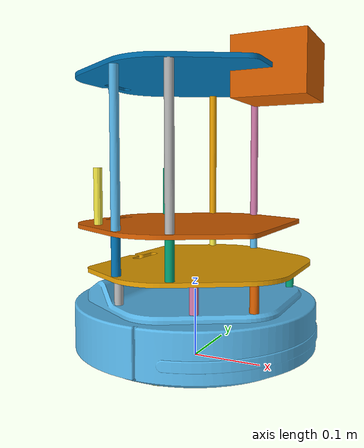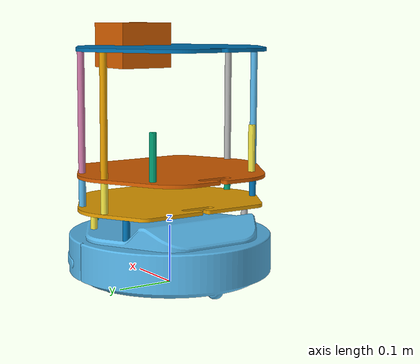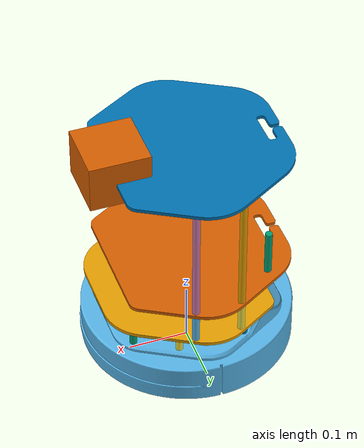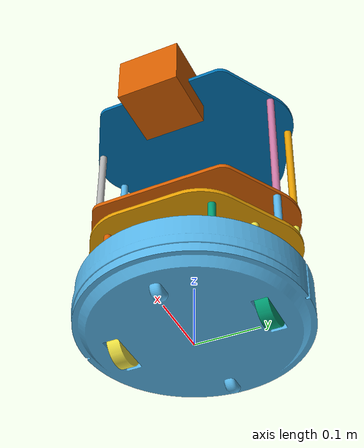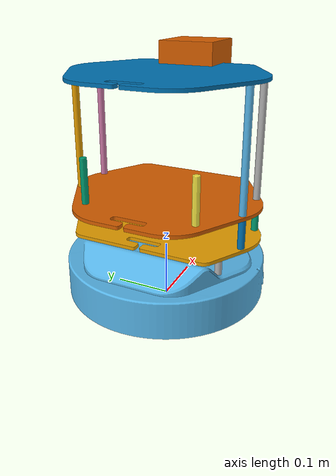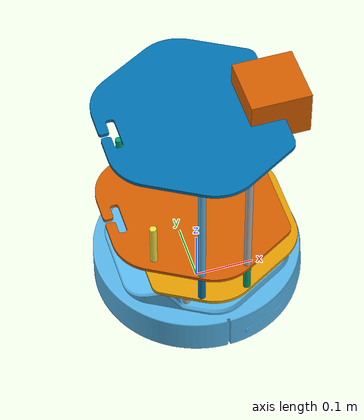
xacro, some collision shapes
<?xml version="1.0"?>
<!--
    - Base      : kobuki
    - Stacks    : hexagons
    - 3d Sensor : no
    - top_plate : urg04lx
-->
<robot name="turtlebot" xmlns:xacro="http://ros.org/wiki/xacro">

  <xacro:arg name="prefix_frame" default=""/>
  <!--xacro:include filename="$(find turtlebot_description)/urdf/turtlebot_library.urdf.xacro" /-->
  <xacro:include filename="$(find turtlebot_description)/urdf/turtlebot_library_multi.urdf.xacro" />
  <xacro:include filename="$(find turtlebot_description)/urdf/stacks/hexagons.urdf.xacro"/>
  <kobuki prefix_frame="$(arg prefix_frame)"/>
  <stack_hexagons prefix_frame="$(arg prefix_frame)" parent="$(arg prefix_frame)base_link"/>
  <sensor_hokuyo_urg04lx prefix="$(arg prefix_frame)" parent="$(arg prefix_frame)plate_top_link" >
		<origin xyz="0.137 0 0.0525" rpy="0 0 0" />
  </sensor_hokuyo_urg04lx>

</robot>

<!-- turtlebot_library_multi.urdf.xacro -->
<!--
  The complete turtlebot library of xacros for easy reference
 -->
<robot xmlns:xacro="http://ros.org/wiki/xacro">
  <!-- General -->
  <xacro:include filename="$(find turtlebot_description)/urdf/common_properties.urdf.xacro"/>
  <xacro:include filename="$(find turtlebot_description)/urdf/turtlebot_properties.urdf.xacro"/>
  <!-- Bases -->
  <!--xacro:include filename="$(find create_description)/urdf/create.urdf.xacro"/-->
  <xacro:include filename="$(find turtlebot_description)/urdf/kobuki_multi.urdf.xacro" />
  <!-- Stacks -->
  <xacro:include filename="$(find turtlebot_description)/urdf/stacks/circles.urdf.xacro"/>
  <xacro:include filename="$(find turtlebot_description)/urdf/stacks/hexagons.urdf.xacro"/>
  <xacro:include filename="$(find turtlebot_description)/urdf/stacks/nostacks.urdf.xacro"/>
  <!-- 3D Sensors -->
  <xacro:include filename="$(find turtlebot_description)/urdf/sensors/kinect.urdf.xacro"/>
  <xacro:include filename="$(find turtlebot_description)/urdf/sensors/asus_xtion_pro.urdf.xacro"/>
  <xacro:include filename="$(find turtlebot_description)/urdf/sensors/asus_xtion_pro_offset.urdf.xacro"/>
  <xacro:include filename="$(find turtlebot_description)/urdf/sensors/astra.urdf.xacro"/>
  <!-- 2D Sensors -->
  <xacro:include filename="$(find turtlebot_description)/urdf/sensors/rplidar.urdf.xacro"/>
  <xacro:include filename="$(find turtlebot_description)/urdf/sensors/hokuyo_urg04lx.urdf.xacro"/>
  <!-- Arms -->

</robot>

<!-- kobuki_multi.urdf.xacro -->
<robot name="kobuki" xmlns:xacro="http://ros.org/wiki/xacro">
  <xacro:include filename="$(find turtlebot_description)/urdf/common_properties.urdf.xacro"/>
  <xacro:include filename="$(find turtlebot_description)/urdf/kobuki_gazebo.urdf.xacro"/>

  <!-- Kobuki -->
  <xacro:macro name="kobuki" params="prefix_frame">
    <link name="${prefix_frame}base_footprint"/>
    <joint name="${prefix_frame}base_joint" type="fixed">
      <origin xyz="0 0 0.0102" rpy="0 0 0" />
      <parent link="${prefix_frame}base_footprint"/>
      <child link="${prefix_frame}base_link" />
    </joint>
    <link name="${prefix_frame}base_link">
      <visual>
        <geometry>
          <!-- new mesh -->
          <mesh filename="package://kobuki_description/meshes/main_body.dae" />
        </geometry>
        <origin xyz="0.001 0 0.05199" rpy="0 0 0"/>
      </visual>
      <collision name="base">
        <geometry>
          <cylinder length="0.10938" radius="0.178"/>
        </geometry>
        <origin xyz="0.0 0 0.05949" rpy="0 0 0"/>
      </collision>
      <inertial>
        <!-- COM experimentally determined -->
        <origin xyz="0.01 0 0"/>
        <mass value="2.4"/> <!-- 2.4/2.6 kg for small/big battery pack -->
        <inertia ixx="0.019995" ixy="0.0" ixz="0.0"
                 iyy="0.019995" iyz="0.0"
                 izz="0.03675" />
      </inertial>
    </link>

    <joint name="${prefix_frame}wheel_left_joint" type="continuous">
      <parent link="${prefix_frame}base_link"/>
      <child link="${prefix_frame}wheel_left_link"/>
      <origin xyz="0.00 ${0.23/2} 0.0250" rpy="${-M_PI/2} 0 0"/>
      <axis xyz="0 0 1"/>
    </joint>
    <link name="${prefix_frame}wheel_left_link">
      <visual>
        <geometry>
          <mesh filename="package://kobuki_description/meshes/wheel.dae"/>
        </geometry>
        <origin xyz="0 0 0" rpy="0 0 0"/>
      </visual>
      <collision>
        <geometry>
          <cylinder length="0.0206" radius="0.0352"/>
        </geometry>
        <origin rpy="0 0 0" xyz="0 0 0"/>
      </collision>
      <inertial>
        <mass value="0.01" />
        <origin xyz="0 0 0" />
        <inertia ixx="0.001" ixy="0.0" ixz="0.0"
                 iyy="0.001" iyz="0.0"
                 izz="0.001" />
      </inertial>
    </link>

    <joint name="${prefix_frame}wheel_right_joint" type="continuous">
      <parent link="${prefix_frame}base_link"/>
      <child link="${prefix_frame}wheel_right_link"/>
      <origin xyz="0.00 -${0.23/2} 0.0250" rpy="${-M_PI/2} 0 0"/>
      <axis xyz="0 0 1"/>
    </joint>
    <link name="${prefix_frame}wheel_right_link">
      <visual>
        <geometry>
          <mesh filename="package://kobuki_description/meshes/wheel.dae"/>
        </geometry>
        <origin xyz="0 0 0" rpy="0 0 0"/>
      </visual>
      <collision>
        <geometry>
          <cylinder length="0.0206" radius="0.0350"/>
        </geometry>
        <origin rpy="0 0 0" xyz="0 0 0"/>
      </collision>
      <inertial>
        <mass value="0.01" />
        <origin xyz="0 0 0" />
        <inertia ixx="0.001" ixy="0.0" ixz="0.0"
                 iyy="0.001" iyz="0.0"
                 izz="0.001" />
      </inertial>
    </link>

    <joint name="${prefix_frame}caster_front_joint" type="fixed">
      <parent link="${prefix_frame}base_link"/>
      <child link="${prefix_frame}caster_front_link"/>
      <origin xyz="0.115 0.0 0.007" rpy="${-M_PI/2} 0 0"/>
    </joint>
    <link name="${prefix_frame}caster_front_link">
      <collision>
        <geometry>
          <cylinder length="0.0176" radius="0.017"/>
        </geometry>
        <origin rpy="0 0 0" xyz="0 0 0"/>
      </collision>
      <inertial>
        <mass value="0.01" />
        <origin xyz="0 0 0" />
        <inertia ixx="0.001" ixy="0.0" ixz="0.0"
                 iyy="0.001" iyz="0.0"
                 izz="0.001" />
      </inertial>
    </link>

    <joint name="${prefix_frame}caster_back_joint" type="fixed">
      <parent link="${prefix_frame}base_link"/>
      <child link="${prefix_frame}caster_back_link"/>
      <origin xyz="-0.135 0.0 0.009" rpy="${-M_PI/2} 0 0"/>
    </joint>
    <link name="${prefix_frame}caster_back_link">
      <collision>
        <geometry>
          <cylinder length="0.0176" radius="0.017"/>
        </geometry>
        <origin rpy="0 0 0" xyz="0 0 0"/>
      </collision>
      <inertial>
        <mass value="0.01" />
        <origin xyz="0 0 0" />
        <inertia ixx="0.001" ixy="0.0" ixz="0.0"
                 iyy="0.001" iyz="0.0"
                 izz="0.001" />
      </inertial>
    </link>

    <!-- Kobuki's sensors -->
    <joint name="${prefix_frame}gyro_joint" type="fixed">
      <axis xyz="0 1 0"/>
      <origin xyz="0.056 0.062 0.0202" rpy="0 0 0"/>
      <parent link="${prefix_frame}base_link"/>
      <child link="${prefix_frame}gyro_link"/>
    </joint>
    <link name="${prefix_frame}gyro_link">
      <inertial>
        <mass value="0.001"/>
        <origin xyz="0 0 0" rpy="0 0 0"/>
        <inertia ixx="0.0001" ixy="0" ixz="0"
                 iyy="0.000001" iyz="0"
                 izz="0.0001"/>
      </inertial>
    </link>

    <joint name="${prefix_frame}cliff_sensor_left_joint" type="fixed">
      <origin xyz="0.08734 0.13601 0.0214" rpy="0 ${M_PI/2} 0" />
      <parent link="${prefix_frame}base_link"/>
      <child link="${prefix_frame}cliff_sensor_left_link" />
    </joint>
    <link name="${prefix_frame}cliff_sensor_left_link">
      <inertial>
        <mass value="0.0001" />
        <origin xyz="0 0 0" />
        <inertia ixx="0.0001" ixy="0.0" ixz="0.0"
                 iyy="0.0001" iyz="0.0"
                 izz="0.0001" />
      </inertial>
    </link>

    <joint name="${prefix_frame}cliff_sensor_right_joint" type="fixed">
      <origin xyz="0.085 -0.13601 0.0214" rpy="0 ${M_PI/2} 0" />
      <parent link="${prefix_frame}base_link"/>
      <child link="${prefix_frame}cliff_sensor_right_link" />
    </joint>
    <link name="${prefix_frame}cliff_sensor_right_link">
      <inertial>
        <mass value="0.0001" />
        <origin xyz="0 0 0" />
        <inertia ixx="0.0001" ixy="0.0" ixz="0.0"
                 iyy="0.0001" iyz="0.0"
                 izz="0.0001" />
      </inertial>
    </link>

    <joint name="${prefix_frame}cliff_sensor_front_joint" type="fixed">
      <origin xyz="0.156 0.00 0.0214" rpy="0 ${M_PI/2} 0" />
      <parent link="${prefix_frame}base_link"/>
      <child link="${prefix_frame}cliff_sensor_front_link" />
    </joint>
    <link name="${prefix_frame}cliff_sensor_front_link">
      <inertial>
        <mass value="0.0001" />
        <origin xyz="0 0 0" />
        <inertia ixx="0.0001" ixy="0.0" ixz="0.0"
                 iyy="0.0001" iyz="0.0"
                 izz="0.0001" />
      </inertial>
    </link>

    <!-- Kobuki Gazebo simulation details -->
    <xacro:kobuki_sim prefix_frame="${prefix_frame}"/>

  </xacro:macro>

</robot>

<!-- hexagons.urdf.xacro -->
<!--
  Hexagon stacks
 -->
<robot name="stack_hexagons" xmlns:xacro="http://ros.org/wiki/xacro">
  <xacro:include filename="$(find turtlebot_description)/urdf/common_properties.urdf.xacro"/>

  <!-- Xacro properties -->
  <xacro:property name="M_SCALE" value="0.001"/>

  <!-- Xacro macros -->
  <!-- Pole macros -->
  <xacro:macro name="stack_bottom_pole" params="prefix_frame parent number x_loc y_loc z_loc">
    <joint name="${prefix_frame}pole_bottom_${number}_joint" type="fixed">
      <origin xyz="${x_loc} ${y_loc} ${z_loc}" rpy="0 0 0"/>
      <parent link="${parent}"/>
      <child link="${prefix_frame}pole_bottom_${number}_link"/>
    </joint>
    <link name="${prefix_frame}pole_bottom_${number}_link">
      <visual>
        <origin xyz="0 0 0" rpy="0 0 0"/>
        <geometry>
          <mesh filename="package://turtlebot_description/meshes/stacks/hexagons/pole_bottom.dae"/>
        </geometry>
      </visual>
      <collision>
        <origin xyz="0 0 0" rpy="0 0 0"/>
        <geometry>
          <cylinder length="0.0492" radius="0.006"/>
        </geometry>
      </collision>
      <inertial>
        <mass value="0.008"/>
        <origin xyz="0 0 0" rpy="0 0 0"/>
        <inertia ixx="0.000001686" ixy="0.0" ixz="0.0"
                 iyy="0.000001686" iyz="0.0"
                 izz="0.000000144"/>
      </inertial>
    </link>
  </xacro:macro>

  <xacro:macro name="stack_middle_pole" params="prefix_frame parent number x_loc y_loc z_loc">
    <joint name="${prefix_frame}pole_middle_${number}_joint" type="fixed">
      <origin xyz="${x_loc} ${y_loc} ${z_loc}" rpy="0 0 0" />
      <parent link="${parent}"/>
      <child link="${prefix_frame}pole_middle_${number}_link"/>
    </joint>
    <link name="${prefix_frame}pole_middle_${number}_link">
      <visual>
        <origin xyz="0 0 0" rpy="0 ${M_PI} 0"/>
        <geometry>
          <mesh filename="package://turtlebot_description/meshes/stacks/hexagons/pole_middle.dae"/>
        </geometry>
      </visual>
      <collision>
        <origin xyz="0 0 0" rpy="0 0 0"/>
        <geometry>
          <cylinder length="0.0608" radius="0.006"/>
        </geometry>
      </collision>
      <inertial>
        <mass value="0.012"/>
        <origin xyz="0 0 0"/>
        <inertia ixx="0.000003805" ixy="0.0" ixz="0.0"
                 iyy="0.000003805" iyz="0.0"
                 izz="0.000000216"/>
      </inertial>
    </link>
  </xacro:macro>

  <xacro:macro name="stack_top_pole" params="prefix_frame parent number x_loc y_loc z_loc">
    <joint name="${prefix_frame}pole_top_${number}_joint" type="fixed">
      <origin xyz="${x_loc} ${y_loc} ${z_loc}" rpy="0 0 0"/>
      <parent link="${parent}"/>
      <child link="${prefix_frame}pole_top_${number}_link"/>
    </joint>
    <link name="${prefix_frame}pole_top_${number}_link">
      <visual>
        <origin xyz=" 0 0 0" rpy="0 0 0"/>
        <geometry>
          <mesh filename="package://turtlebot_description/meshes/stacks/hexagons/pole_top.dae"/>
        </geometry>
      </visual>
      <collision>
        <origin xyz="0 0 0" rpy="0 0 0"/>
        <geometry>
          <cylinder length="0.2032" radius="0.006"/>
        </geometry>
      </collision>
      <inertial>
        <mass value="0.060"/>
        <origin xyz="0 0 0"/>
        <inertia ixx="0.000206991" ixy="0.0" ixz="0.0"
                 iyy="0.000206991" iyz="0.0"
                 izz="0.000001080"/>
      </inertial>
    </link>
  </xacro:macro>

  <xacro:macro name="stack_3d_sensor_pole" params="prefix_frame parent number x_loc y_loc z_loc">
    <joint name="${prefix_frame}pole_kinect_${number}_joint" type="fixed">
      <origin xyz="${x_loc} ${y_loc} ${z_loc}" rpy="0 0 0"/>
      <parent link="${parent}"/>
      <child link="${prefix_frame}pole_kinect_${number}_link"/>
    </joint>
    <link name="${prefix_frame}pole_kinect_${number}_link">
      <visual>
        <origin xyz="0 0 -0.01" rpy="0 0 0"/>
        <geometry>
          <mesh filename="package://turtlebot_description/meshes/sensors/sensor_pole.dae" />
        </geometry>
      </visual>
      <collision>
        <origin xyz="0 0 0" rpy="0 0 0"/>
        <geometry>
          <cylinder length="0.0936" radius="0.006"/>
        </geometry>
      </collision>
      <inertial>
        <mass value="0.020"/>
        <origin xyz="0 0 0"/>
        <inertia ixx="0.000014782" ixy="0.0" ixz="0.0"
                 iyy="0.000014782" iyz="0.0"
                 izz="0.000000360"/>
      </inertial>
    </link>
  </xacro:macro>

  <xacro:macro name="stack_hexagons" params="prefix_frame parent">
    <stack_bottom_pole prefix_frame="${prefix_frame}" parent="${parent}" number="0" x_loc= "0.120" y_loc= "0.082" z_loc="0.1028"/>
    <stack_bottom_pole prefix_frame="${prefix_frame}" parent="${parent}" number="1" x_loc= "0.055" y_loc= "0.120" z_loc="0.1028"/>
    <stack_bottom_pole prefix_frame="${prefix_frame}" parent="${parent}" number="2" x_loc="-0.055" y_loc= "0.120" z_loc="0.1028"/>
    <stack_bottom_pole prefix_frame="${prefix_frame}" parent="${parent}" number="3" x_loc= "0.120" y_loc="-0.082" z_loc="0.1028"/>
    <stack_bottom_pole prefix_frame="${prefix_frame}" parent="${parent}" number="4" x_loc= "0.055" y_loc="-0.120" z_loc="0.1028"/>
    <stack_bottom_pole prefix_frame="${prefix_frame}" parent="${parent}" number="5" x_loc="-0.055" y_loc="-0.120" z_loc="0.1028"/>

    <joint name="${prefix_frame}plate_bottom_joint" type="fixed">
      <origin xyz="0.02364 0.0 0.1306" rpy="0 0 0"/>
      <parent link="${parent}"/>
      <child link="${prefix_frame}plate_bottom_link"/>
    </joint>
    <link name="${prefix_frame}plate_bottom_link">
      <visual>
        <origin xyz="0 0 0" rpy="0 0 0"/>
        <geometry>
          <mesh filename="package://turtlebot_description/meshes/stacks/hexagons/plate_bottom.dae"/>
        </geometry>
      </visual>
      <collision>
        <origin xyz="-0.02364 0 0" rpy="0 0 0"/>
        <geometry>
          <cylinder length="0.006" radius="0.170"/>
        </geometry>
      </collision>
      <inertial>
        <mass value="0.520" />
        <origin xyz="0 0 0" />
        <inertia ixx="0.003328" ixy="0.0" ixz="0.0"
                 iyy="0.003328" iyz="0.0"
                 izz="0.006656" />
      </inertial>
    </link>

    <stack_middle_pole prefix_frame="${prefix_frame}" parent="${parent}" number="0" x_loc= "0.0381" y_loc= "0.1505" z_loc="0.1640"/>
    <stack_middle_pole prefix_frame="${prefix_frame}" parent="${parent}" number="1" x_loc= "0.0381" y_loc="-0.1505" z_loc="0.1640"/>
    <stack_middle_pole prefix_frame="${prefix_frame}" parent="${parent}" number="2" x_loc="-0.0381" y_loc= "0.1505" z_loc="0.1640"/>
    <stack_middle_pole prefix_frame="${prefix_frame}" parent="${parent}" number="3" x_loc="-0.0381" y_loc="-0.1505" z_loc="0.1640"/>

    <joint name="${prefix_frame}plate_middle_joint" type="fixed">
      <origin xyz="-0.01364 0.0 0.1874" rpy="0 0 0"/>
      <parent link="${parent}"/>
      <child link="${prefix_frame}plate_middle_link"/>
    </joint>
    <link name="${prefix_frame}plate_middle_link">
      <visual>
        <origin xyz="0 0 0" rpy="0 0 0"/>
        <geometry>
          <mesh filename="package://turtlebot_description/meshes/stacks/hexagons/plate_middle.dae"/>
        </geometry>
      </visual>
      <collision>
        <origin xyz="0.01364 0.0 0.0" rpy="0 0 0"/>
        <geometry>
          <cylinder length="0.006" radius="0.170"/>
        </geometry>
      </collision>
      <inertial>
        <mass value="0.520" />
        <origin xyz="0 0 0" />
        <inertia ixx="0.003328" ixy="0.0" ixz="0.0"
                 iyy="0.003328" iyz="0.0"
                 izz="0.006656" />
      </inertial>
    </link>

    <stack_top_pole prefix_frame="${prefix_frame}" parent="${parent}" number="0" x_loc= "0.0381" y_loc= "0.1505" z_loc="0.2920"/>
    <stack_top_pole prefix_frame="${prefix_frame}" parent="${parent}" number="1" x_loc= "0.0381" y_loc="-0.1505" z_loc="0.2920"/>
    <stack_top_pole prefix_frame="${prefix_frame}" parent="${parent}" number="2" x_loc="-0.0381" y_loc= "0.1505" z_loc="0.2920"/>
    <stack_top_pole prefix_frame="${prefix_frame}" parent="${parent}" number="3" x_loc="-0.0381" y_loc="-0.1505" z_loc="0.2920"/>
    <stack_3d_sensor_pole prefix_frame="${prefix_frame}" parent="${parent}" number="0" x_loc="-0.1024" y_loc= "0.098" z_loc="0.2372"/>
    <stack_3d_sensor_pole prefix_frame="${prefix_frame}" parent="${parent}" number="1" x_loc="-0.1024" y_loc="-0.098" z_loc="0.2372"/>

    <joint name="${prefix_frame}plate_top_joint" type="fixed">
      <origin xyz="-0.01364 0.0  0.3966" rpy="0 0 0"/>
      <parent link="${parent}"/>
      <child link="${prefix_frame}plate_top_link"/>
    </joint>
    <link name="${prefix_frame}plate_top_link">
      <visual>
        <origin xyz="0 0 0" rpy="0 0 0"/>
        <geometry>
          <mesh filename="package://turtlebot_description/meshes/stacks/hexagons/plate_top.dae"/>
        </geometry>
      </visual>
      <collision>
        <origin xyz="0.01364 0 0" rpy="0 0 0"/>
        <geometry>
          <cylinder length="0.006" radius="0.170"/>
        </geometry>
      </collision>
      <inertial>
        <mass value="0.520"/>
        <origin xyz="0 0 0"/>
        <inertia ixx="0.003328" ixy="0.0" ixz="0.0"
                 iyy="0.003328" iyz="0.0"
                 izz="0.006656" />
      </inertial>
    </link>
  </xacro:macro>
</robot>

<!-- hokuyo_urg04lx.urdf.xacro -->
<robot name="sensor_hokuyo_urg04lx" xmlns:xacro="http://ros.org/wiki/xacro">

  <xacro:property name="H_SCALE" value="0.025"/>

  <!--xacro:macro name="sensor_hokuyo_urg04lx" params="prefix parent *origin min_angle:=2.0943 max_angle:=-2.0943"-->
  <xacro:macro name="sensor_hokuyo_urg04lx" params="prefix parent *origin min_angle:=1.59 max_angle:=-1.59">

    <joint name="${prefix}laser_joint" type="fixed">
      <!-- FRONT MOUNT  -->
      <!-- origin xyz="0.29 0 0.1" -->
      <!-- TOP MOUNT -->
      <!-- origin xyz="0.0 0.0 0.325"-->
      <xacro:insert_block name="origin" />
      <parent link="${parent}"/>
      <child link="${prefix}laser_link"/>
    </joint>

    <link name="${prefix}laser_link">
      <collision>
        <origin xyz="0 0 -0.05" rpy="0 0 0"/>
        <geometry>
          <box size="0.1 0.1 0.08"/>
        </geometry>
      </collision>

      <visual>
        <origin xyz="0 0 -0.05" rpy="0 0 0"/>
        <geometry>
            <mesh filename="package://turtlebot_description/meshes/sensors/hokuyo_urg_04lx.dae" scale="${H_SCALE} ${H_SCALE} ${H_SCALE}"/>
        </geometry>
      </visual>

      <inertial>
        <mass value="1e-5" />
        <origin xyz="0 0 0" rpy="0 0 0"/>
        <inertia ixx="1e-6" ixy="0" ixz="0" iyy="1e-6" iyz="0" izz="1e-6" />
      </inertial>
    </link>

    <!-- Hokuyo sensor for simulation -->
    <xacro:sensor_hokuyo_urg_gazebo prefix="${prefix}"/>

  </xacro:macro>

  <xacro:macro name="sensor_hokuyo_urg_gazebo" params="prefix">
    <gazebo reference="${prefix}laser_link">
			<sensor type="ray" name="${prefix}sensor">
				<pose>0 0 0 0 0 0</pose>
				<visualize>false</visualize>
				<update_rate>10</update_rate>
				<ray>
					<scan>
						<horizontal>
							<samples>681</samples>
							<resolution>1</resolution>
							<min_angle>${min_angle}</min_angle>
							<max_angle>${max_angle}</max_angle>
						</horizontal>
					</scan>
					<range>
						<min>0.02</min>
						<max>5.6</max>
						<resolution>0.0061435</resolution>
					</range>
					<noise>
						<type>gaussian</type>
						<mean>0.0</mean>
						<stddev>0.01</stddev>
					</noise>
				</ray>
				<plugin name="gazebo_ros_head_hokuyo_controller" filename="libgazebo_ros_laser.so">
					<topicName>scan</topicName>
					<frameName>${prefix}laser_link</frameName>
					<ignoreTfPrefix>1</ignoreTfPrefix>
				</plugin>
			</sensor>
	</gazebo>
  </xacro:macro>

</robot>
